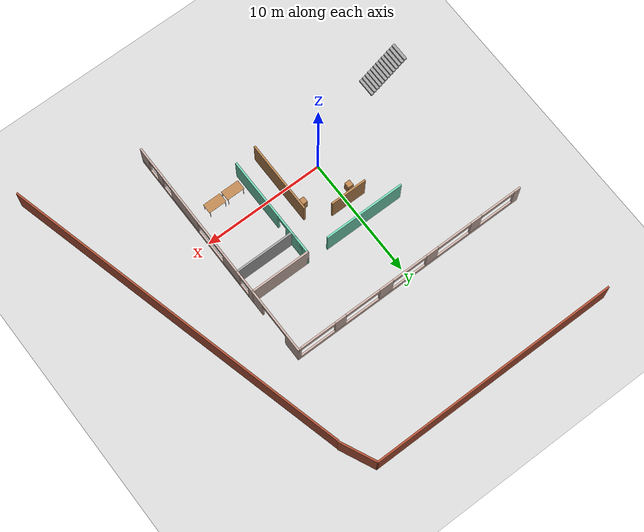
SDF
<sdf version="1.6">
 <world name="default">
  <model name="ground_plane">
   <static>1</static>
   <link name="link">
    <collision name="collision">
     <geometry><plane><normal>0 0 1</normal><size>100 100</size></plane></geometry>
     <surface><friction><ode><mu>100</mu><mu2>50</mu2></ode></friction></surface>
    </collision>
    <visual name="visual">
     <cast_shadows>0</cast_shadows>
     <geometry><plane><normal>0 0 1</normal><size>100 100</size></plane></geometry>
     <material>
      <script><uri>file://media/materials/scripts/gazebo.material</uri><name>Gazebo/Grey</name></script>
     </material>
    </visual>
   </link>
  </model>
  <model name="buildingv2">
   <pose>0.458303 2.11352 0 0 -0 0</pose>
   <link name="Stairs_1">
    <visual name="Stairs_1_Visual_0">
     <pose>-7.25739 -4.97699 0.096154 0 0 -1.5708</pose>
     <geometry><box><size>1.5 0.246923 0.192308</size></box></geometry>
     <material>
      <script><uri>file://media/materials/scripts/gazebo.material</uri><name>Gazebo/Grey</name></script>
      <ambient>1 1 1 1</ambient>
     </material>
     <meta><layer>0</layer></meta>
    </visual>
    <collision name="Stairs_1_Collision_0">
     <geometry><box><size>1.5 0.246923 0.192308</size></box></geometry>
     <pose>-7.25739 -4.97699 0.096154 0 0 -1.5708</pose>
    </collision>
    <visual name="Stairs_1_Visual_1">
     <pose>-7.50432 -4.97699 0.288462 0 0 -1.5708</pose>
     <geometry><box><size>1.5 0.246923 0.192308</size></box></geometry>
     <material>
      <script><uri>file://media/materials/scripts/gazebo.material</uri><name>Gazebo/Grey</name></script>
      <ambient>1 1 1 1</ambient>
     </material>
     <meta><layer>0</layer></meta>
    </visual>
    <collision name="Stairs_1_Collision_1">
     <geometry><box><size>1.5 0.246923 0.192308</size></box></geometry>
     <pose>-7.50432 -4.97699 0.288462 0 0 -1.5708</pose>
    </collision>
    <visual name="Stairs_1_Visual_2">
     <pose>-7.75124 -4.97699 0.480769 0 0 -1.5708</pose>
     <geometry><box><size>1.5 0.246923 0.192308</size></box></geometry>
     <material>
      <script><uri>file://media/materials/scripts/gazebo.material</uri><name>Gazebo/Grey</name></script>
      <ambient>1 1 1 1</ambient>
     </material>
     <meta><layer>0</layer></meta>
    </visual>
    <collision name="Stairs_1_Collision_2">
     <geometry><box><size>1.5 0.246923 0.192308</size></box></geometry>
     <pose>-7.75124 -4.97699 0.480769 0 0 -1.5708</pose>
    </collision>
    <visual name="Stairs_1_Visual_3">
     <pose>-7.99816 -4.97699 0.673077 0 0 -1.5708</pose>
     <geometry><box><size>1.5 0.246923 0.192308</size></box></geometry>
     <material>
      <script><uri>file://media/materials/scripts/gazebo.material</uri><name>Gazebo/Grey</name></script>
      <ambient>1 1 1 1</ambient>
     </material>
     <meta><layer>0</layer></meta>
    </visual>
    <collision name="Stairs_1_Collision_3">
     <geometry><box><size>1.5 0.246923 0.192308</size></box></geometry>
     <pose>-7.99816 -4.97699 0.673077 0 0 -1.5708</pose>
    </collision>
    <visual name="Stairs_1_Visual_4">
     <pose>-8.24509 -4.97699 0.865385 0 0 -1.5708</pose>
     <geometry><box><size>1.5 0.246923 0.192308</size></box></geometry>
     <material>
      <script><uri>file://media/materials/scripts/gazebo.material</uri><name>Gazebo/Grey</name></script>
      <ambient>1 1 1 1</ambient>
     </material>
     <meta><layer>0</layer></meta>
    </visual>
    <collision name="Stairs_1_Collision_4">
     <geometry><box><size>1.5 0.246923 0.192308</size></box></geometry>
     <pose>-8.24509 -4.97699 0.865385 0 0 -1.5708</pose>
    </collision>
    <visual name="Stairs_1_Visual_5">
     <pose>-8.49201 -4.97699 1.05769 0 0 -1.5708</pose>
     <geometry><box><size>1.5 0.246923 0.192308</size></box></geometry>
     <material>
      <script><uri>file://media/materials/scripts/gazebo.material</uri><name>Gazebo/Grey</name></script>
      <ambient>1 1 1 1</ambient>
     </material>
     <meta><layer>0</layer></meta>
    </visual>
    <collision name="Stairs_1_Collision_5">
     <geometry><box><size>1.5 0.246923 0.192308</size></box></geometry>
     <pose>-8.49201 -4.97699 1.05769 0 0 -1.5708</pose>
    </collision>
    <visual name="Stairs_1_Visual_6">
     <pose>-8.73893 -4.97699 1.25 0 0 -1.5708</pose>
     <geometry><box><size>1.5 0.246923 0.192308</size></box></geometry>
     <material>
      <script><uri>file://media/materials/scripts/gazebo.material</uri><name>Gazebo/Grey</name></script>
      <ambient>1 1 1 1</ambient>
     </material>
     <meta><layer>0</layer></meta>
    </visual>
    <collision name="Stairs_1_Collision_6">
     <geometry><box><size>1.5 0.246923 0.192308</size></box></geometry>
     <pose>-8.73893 -4.97699 1.25 0 0 -1.5708</pose>
    </collision>
    <visual name="Stairs_1_Visual_7">
     <pose>-8.98586 -4.97699 1.44231 0 0 -1.5708</pose>
     <geometry><box><size>1.5 0.246923 0.192308</size></box></geometry>
     <material>
      <script><uri>file://media/materials/scripts/gazebo.material</uri><name>Gazebo/Grey</name></script>
      <ambient>1 1 1 1</ambient>
     </material>
     <meta><layer>0</layer></meta>
    </visual>
    <collision name="Stairs_1_Collision_7">
     <geometry><box><size>1.5 0.246923 0.192308</size></box></geometry>
     <pose>-8.98586 -4.97699 1.44231 0 0 -1.5708</pose>
    </collision>
    <visual name="Stairs_1_Visual_8">
     <pose>-9.23278 -4.97699 1.63461 0 0 -1.5708</pose>
     <geometry><box><size>1.5 0.246923 0.192308</size></box></geometry>
     <material>
      <script><uri>file://media/materials/scripts/gazebo.material</uri><name>Gazebo/Grey</name></script>
      <ambient>1 1 1 1</ambient>
     </material>
     <meta><layer>0</layer></meta>
    </visual>
    <collision name="Stairs_1_Collision_8">
     <geometry><box><size>1.5 0.246923 0.192308</size></box></geometry>
     <pose>-9.23278 -4.97699 1.63461 0 0 -1.5708</pose>
    </collision>
    <visual name="Stairs_1_Visual_9">
     <pose>-9.4797 -4.97699 1.82692 0 0 -1.5708</pose>
     <geometry><box><size>1.5 0.246923 0.192308</size></box></geometry>
     <material>
      <script><uri>file://media/materials/scripts/gazebo.material</uri><name>Gazebo/Grey</name></script>
      <ambient>1 1 1 1</ambient>
     </material>
     <meta><layer>0</layer></meta>
    </visual>
    <collision name="Stairs_1_Collision_9">
     <geometry><box><size>1.5 0.246923 0.192308</size></box></geometry>
     <pose>-9.4797 -4.97699 1.82692 0 0 -1.5708</pose>
    </collision>
    <visual name="Stairs_1_Visual_10">
     <pose>-9.72662 -4.97699 2.01923 0 0 -1.5708</pose>
     <geometry><box><size>1.5 0.246923 0.192308</size></box></geometry>
     <material>
      <script><uri>file://media/materials/scripts/gazebo.material</uri><name>Gazebo/Grey</name></script>
      <ambient>1 1 1 1</ambient>
     </material>
     <meta><layer>0</layer></meta>
    </visual>
    <collision name="Stairs_1_Collision_10">
     <geometry><box><size>1.5 0.246923 0.192308</size></box></geometry>
     <pose>-9.72662 -4.97699 2.01923 0 0 -1.5708</pose>
    </collision>
    <visual name="Stairs_1_Visual_11">
     <pose>-9.97355 -4.97699 2.21154 0 0 -1.5708</pose>
     <geometry><box><size>1.5 0.246923 0.192308</size></box></geometry>
     <material>
      <script><uri>file://media/materials/scripts/gazebo.material</uri><name>Gazebo/Grey</name></script>
      <ambient>1 1 1 1</ambient>
     </material>
     <meta><layer>0</layer></meta>
    </visual>
    <collision name="Stairs_1_Collision_11">
     <geometry><box><size>1.5 0.246923 0.192308</size></box></geometry>
     <pose>-9.97355 -4.97699 2.21154 0 0 -1.5708</pose>
    </collision>
    <visual name="Stairs_1_Visual_12">
     <pose>-10.2205 -4.97699 2.40385 0 0 -1.5708</pose>
     <geometry><box><size>1.5 0.246923 0.192308</size></box></geometry>
     <material>
      <script><uri>file://media/materials/scripts/gazebo.material</uri><name>Gazebo/Grey</name></script>
      <ambient>1 1 1 1</ambient>
     </material>
     <meta><layer>0</layer></meta>
    </visual>
    <collision name="Stairs_1_Collision_12">
     <geometry><box><size>1.5 0.246923 0.192308</size></box></geometry>
     <pose>-10.2205 -4.97699 2.40385 0 0 -1.5708</pose>
    </collision>
   </link>
   <link name="Wall_107">
    <collision name="Wall_107_Collision">
     <geometry><box><size>29.3218 0.15 2.5</size></box></geometry>
     <pose>0 0 1.25 0 -0 0</pose>
    </collision>
    <visual name="Wall_107_Visual">
     <pose>0 0 1.25 0 -0 0</pose>
     <geometry><box><size>29.3218 0.15 2.5</size></box></geometry>
     <material>
      <script><uri>file://media/materials/scripts/gazebo.material</uri><name>Gazebo/Bricks</name></script>
      <ambient>1 1 1 1</ambient>
     </material>
     <meta><layer>0</layer></meta>
    </visual>
    <pose>14.9208 1.35275 0 0 -0 1.82599</pose>
   </link>
   <link name="Wall_108">
    <collision name="Wall_108_Collision">
     <geometry><box><size>3.15356 0.15 2.5</size></box></geometry>
     <pose>0 0 1.25 0 -0 0</pose>
    </collision>
    <visual name="Wall_108_Visual">
     <pose>0 0 1.25 0 -0 0</pose>
     <geometry><box><size>3.15356 0.15 2.5</size></box></geometry>
     <material>
      <script><uri>file://media/materials/scripts/gazebo.material</uri><name>Gazebo/Bricks</name></script>
      <ambient>1 1 1 1</ambient>
     </material>
     <meta><layer>0</layer></meta>
    </visual>
    <pose>10.6056 16.9518 0 0 -0 2.006</pose>
   </link>
   <link name="Wall_109">
    <collision name="Wall_109_Collision">
     <geometry><box><size>20.75 0.15 2.5</size></box></geometry>
     <pose>0 0 1.25 0 -0 0</pose>
    </collision>
    <visual name="Wall_109_Visual">
     <pose>0 0 1.25 0 -0 0</pose>
     <geometry><box><size>20.75 0.15 2.5</size></box></geometry>
     <material>
      <script><uri>file://media/materials/scripts/gazebo.material</uri><name>Gazebo/Bricks</name></script>
      <ambient>1 1 1 1</ambient>
     </material>
     <meta><layer>0</layer></meta>
    </visual>
    <pose>-0.327523 18.3136 0 0 -0 3.14159</pose>
   </link>
   <link name="Wall_111">
    <collision name="Wall_111_Collision">
     <geometry><box><size>2 0.15 2.5</size></box></geometry>
     <pose>0 0 1.25 0 -0 0</pose>
    </collision>
    <visual name="Wall_111_Visual">
     <pose>0 0 1.25 0 -0 0</pose>
     <geometry><box><size>2 0.15 2.5</size></box></geometry>
     <material>
      <script><uri>file://media/materials/scripts/gazebo.material</uri><name>Gazebo/Grey</name></script>
      <ambient>0.435294 0.796078 0.67451 1</ambient>
     </material>
     <meta><layer>0</layer></meta>
    </visual>
    <pose>4.67372 2.45158 0 0 -0 1.5708</pose>
   </link>
   <link name="Wall_112">
    <collision name="Wall_112_Collision">
     <geometry><box><size>5 0.15 2.5</size></box></geometry>
     <pose>0 0 1.25 0 -0 0</pose>
    </collision>
    <visual name="Wall_112_Visual">
     <pose>0 0 1.25 0 -0 0</pose>
     <geometry><box><size>5 0.15 2.5</size></box></geometry>
     <material>
      <script><uri>file://media/materials/scripts/gazebo.material</uri><name>Gazebo/Grey</name></script>
      <ambient>0.760784 0.662745 0.627451 1</ambient>
     </material>
     <meta><layer>0</layer></meta>
    </visual>
    <pose>7.09872 3.37658 0 0 -0 0</pose>
   </link>
   <link name="Wall_121">
    <pose>9.52372 6.05158 0 0 -0 1.5708</pose>
    <visual name="Wall_121_Visual_0">
     <pose>-2.0984 0 1.25 0 -0 0</pose>
     <geometry><box><size>1.3032 0.15 2.5</size></box></geometry>
     <material>
      <script><uri>file://media/materials/scripts/gazebo.material</uri><name>Gazebo/Grey</name></script>
      <ambient>0.760784 0.662745 0.627451 1</ambient>
     </material>
     <meta><layer>0</layer></meta>
    </visual>
    <collision name="Wall_121_Collision_0">
     <geometry><box><size>1.3032 0.15 2.5</size></box></geometry>
     <pose>-2.0984 0 1.25 0 -0 0</pose>
    </collision>
    <visual name="Wall_121_Visual_1">
     <pose>1.9816 0 1.25 0 -0 0</pose>
     <geometry><box><size>1.5368 0.15 2.5</size></box></geometry>
     <material>
      <script><uri>file://media/materials/scripts/gazebo.material</uri><name>Gazebo/Grey</name></script>
      <ambient>0.760784 0.662745 0.627451 1</ambient>
     </material>
     <meta><layer>0</layer></meta>
    </visual>
    <collision name="Wall_121_Collision_1">
     <geometry><box><size>1.5368 0.15 2.5</size></box></geometry>
     <pose>1.9816 0 1.25 0 -0 0</pose>
    </collision>
    <visual name="Wall_121_Visual_2">
     <pose>-0.116804 0 2.25 0 -0 0</pose>
     <geometry><box><size>2.66 0.15 0.5</size></box></geometry>
     <material>
      <script><uri>file://media/materials/scripts/gazebo.material</uri><name>Gazebo/Grey</name></script>
      <ambient>0.760784 0.662745 0.627451 1</ambient>
     </material>
     <meta><layer>0</layer></meta>
    </visual>
    <collision name="Wall_121_Collision_2">
     <geometry><box><size>2.66 0.15 0.5</size></box></geometry>
     <pose>-0.116804 0 2.25 0 -0 0</pose>
    </collision>
   </link>
   <link name="Wall_123">
    <pose>9.52372 -3.39842 0 0 0 -1.5708</pose>
    <visual name="Wall_123_Visual_0">
     <pose>-6.5741 0 1.25 0 -0 0</pose>
     <geometry><box><size>0.551797 0.15 2.5</size></box></geometry>
     <material>
      <script><uri>file://media/materials/scripts/gazebo.material</uri><name>Gazebo/Grey</name></script>
      <ambient>0.760784 0.662745 0.627451 1</ambient>
     </material>
     <meta><layer>0</layer></meta>
    </visual>
    <collision name="Wall_123_Collision_0">
     <geometry><box><size>0.551797 0.15 2.5</size></box></geometry>
     <pose>-6.5741 0 1.25 0 -0 0</pose>
    </collision>
    <visual name="Wall_123_Visual_1">
     <pose>0.275898 0 0.25 0 -0 0</pose>
     <geometry><box><size>13.1482 0.15 0.5</size></box></geometry>
     <material>
      <script><uri>file://media/materials/scripts/gazebo.material</uri><name>Gazebo/Grey</name></script>
      <ambient>0.760784 0.662745 0.627451 1</ambient>
     </material>
     <meta><layer>0</layer></meta>
    </visual>
    <collision name="Wall_123_Collision_1">
     <geometry><box><size>13.1482 0.15 0.5</size></box></geometry>
     <pose>0.275898 0 0.25 0 -0 0</pose>
    </collision>
    <visual name="Wall_123_Visual_2">
     <pose>-4.26781 0 1.5 0 -0 0</pose>
     <geometry><box><size>2.06079 0.15 2</size></box></geometry>
     <material>
      <script><uri>file://media/materials/scripts/gazebo.material</uri><name>Gazebo/Grey</name></script>
      <ambient>0.760784 0.662745 0.627451 1</ambient>
     </material>
     <meta><layer>0</layer></meta>
    </visual>
    <collision name="Wall_123_Collision_2">
     <geometry><box><size>2.06079 0.15 2</size></box></geometry>
     <pose>-4.26781 0 1.5 0 -0 0</pose>
    </collision>
    <visual name="Wall_123_Visual_3">
     <pose>1.4125 0 1.5 0 -0 0</pose>
     <geometry><box><size>3.29982 0.15 2</size></box></geometry>
     <material>
      <script><uri>file://media/materials/scripts/gazebo.material</uri><name>Gazebo/Grey</name></script>
      <ambient>0.760784 0.662745 0.627451 1</ambient>
     </material>
     <meta><layer>0</layer></meta>
    </visual>
    <collision name="Wall_123_Collision_3">
     <geometry><box><size>3.29982 0.15 2</size></box></geometry>
     <pose>1.4125 0 1.5 0 -0 0</pose>
    </collision>
    <visual name="Wall_123_Visual_4">
     <pose>4.41893 0 1.5 0 -0 0</pose>
     <geometry><box><size>0.713053 0.15 2</size></box></geometry>
     <material>
      <script><uri>file://media/materials/scripts/gazebo.material</uri><name>Gazebo/Grey</name></script>
      <ambient>0.760784 0.662745 0.627451 1</ambient>
     </material>
     <meta><layer>0</layer></meta>
    </visual>
    <collision name="Wall_123_Collision_4">
     <geometry><box><size>0.713053 0.15 2</size></box></geometry>
     <pose>4.41893 0 1.5 0 -0 0</pose>
    </collision>
    <visual name="Wall_123_Visual_5">
     <pose>6.31273 0 1.5 0 -0 0</pose>
     <geometry><box><size>1.07454 0.15 2</size></box></geometry>
     <material>
      <script><uri>file://media/materials/scripts/gazebo.material</uri><name>Gazebo/Grey</name></script>
      <ambient>0.760784 0.662745 0.627451 1</ambient>
     </material>
     <meta><layer>0</layer></meta>
    </visual>
    <collision name="Wall_123_Collision_5">
     <geometry><box><size>1.07454 0.15 2</size></box></geometry>
     <pose>6.31273 0 1.5 0 -0 0</pose>
    </collision>
    <visual name="Wall_123_Visual_6">
     <pose>-5.7982 0 2.25 0 -0 0</pose>
     <geometry><box><size>1 0.15 0.5</size></box></geometry>
     <material>
      <script><uri>file://media/materials/scripts/gazebo.material</uri><name>Gazebo/Grey</name></script>
      <ambient>0.760784 0.662745 0.627451 1</ambient>
     </material>
     <meta><layer>0</layer></meta>
    </visual>
    <collision name="Wall_123_Collision_6">
     <geometry><box><size>1 0.15 0.5</size></box></geometry>
     <pose>-5.7982 0 2.25 0 -0 0</pose>
    </collision>
    <visual name="Wall_123_Visual_7">
     <pose>-1.73742 0 2.25 0 -0 0</pose>
     <geometry><box><size>3 0.15 0.5</size></box></geometry>
     <material>
      <script><uri>file://media/materials/scripts/gazebo.material</uri><name>Gazebo/Grey</name></script>
      <ambient>0.760784 0.662745 0.627451 1</ambient>
     </material>
     <meta><layer>0</layer></meta>
    </visual>
    <collision name="Wall_123_Collision_7">
     <geometry><box><size>3 0.15 0.5</size></box></geometry>
     <pose>-1.73742 0 2.25 0 -0 0</pose>
    </collision>
    <visual name="Wall_123_Visual_8">
     <pose>3.56241 0 2.25 0 -0 0</pose>
     <geometry><box><size>1 0.15 0.5</size></box></geometry>
     <material>
      <script><uri>file://media/materials/scripts/gazebo.material</uri><name>Gazebo/Grey</name></script>
      <ambient>0.760784 0.662745 0.627451 1</ambient>
     </material>
     <meta><layer>0</layer></meta>
    </visual>
    <collision name="Wall_123_Collision_8">
     <geometry><box><size>1 0.15 0.5</size></box></geometry>
     <pose>3.56241 0 2.25 0 -0 0</pose>
    </collision>
    <visual name="Wall_123_Visual_9">
     <pose>5.27546 0 2.25 0 -0 0</pose>
     <geometry><box><size>1 0.15 0.5</size></box></geometry>
     <material>
      <script><uri>file://media/materials/scripts/gazebo.material</uri><name>Gazebo/Grey</name></script>
      <ambient>0.760784 0.662745 0.627451 1</ambient>
     </material>
     <meta><layer>0</layer></meta>
    </visual>
    <collision name="Wall_123_Collision_9">
     <geometry><box><size>1 0.15 0.5</size></box></geometry>
     <pose>5.27546 0 2.25 0 -0 0</pose>
    </collision>
   </link>
   <link name="Wall_131">
    <pose>4.67372 -1.78352 0 0 -0 1.5708</pose>
    <visual name="Wall_131_Visual_0">
     <pose>-0.819633 0 1.25 0 -0 0</pose>
     <geometry><box><size>5.13093 0.15 2.5</size></box></geometry>
     <material>
      <script><uri>file://media/materials/scripts/gazebo.material</uri><name>Gazebo/Grey</name></script>
      <ambient>0.435294 0.796078 0.67451 1</ambient>
     </material>
     <meta><layer>0</layer></meta>
    </visual>
    <collision name="Wall_131_Collision_0">
     <geometry><box><size>5.13093 0.15 2.5</size></box></geometry>
     <pose>-0.819633 0 1.25 0 -0 0</pose>
    </collision>
    <visual name="Wall_131_Visual_1">
     <pose>3.01547 0 1.25 0 -0 0</pose>
     <geometry><box><size>0.739267 0.15 2.5</size></box></geometry>
     <material>
      <script><uri>file://media/materials/scripts/gazebo.material</uri><name>Gazebo/Grey</name></script>
      <ambient>0.435294 0.796078 0.67451 1</ambient>
     </material>
     <meta><layer>0</layer></meta>
    </visual>
    <collision name="Wall_131_Collision_1">
     <geometry><box><size>0.739267 0.15 2.5</size></box></geometry>
     <pose>3.01547 0 1.25 0 -0 0</pose>
    </collision>
    <visual name="Wall_131_Visual_2">
     <pose>2.19583 0 2.25 0 -0 0</pose>
     <geometry><box><size>0.9 0.15 0.5</size></box></geometry>
     <material>
      <script><uri>file://media/materials/scripts/gazebo.material</uri><name>Gazebo/Grey</name></script>
      <ambient>0.435294 0.796078 0.67451 1</ambient>
     </material>
     <meta><layer>0</layer></meta>
    </visual>
    <collision name="Wall_131_Collision_2">
     <geometry><box><size>0.9 0.15 0.5</size></box></geometry>
     <pose>2.19583 0 2.25 0 -0 0</pose>
    </collision>
   </link>
   <link name="Wall_143">
    <collision name="Wall_143_Collision">
     <geometry><box><size>3 0.15 2.5</size></box></geometry>
     <pose>0 0 1.25 0 -0 0</pose>
    </collision>
    <visual name="Wall_143_Visual">
     <pose>0 0 1.25 0 -0 0</pose>
     <geometry><box><size>3 0.15 2.5</size></box></geometry>
     <material>
      <script><uri>file://media/materials/scripts/gazebo.material</uri><name>Gazebo/Wood</name></script>
      <ambient>1 1 1 1</ambient>
     </material>
     <meta><layer>0</layer></meta>
    </visual>
    <pose>-0.451279 1.52658 0 0 -0 0</pose>
   </link>
   <link name="Wall_159">
    <collision name="Wall_159_Collision">
     <geometry><box><size>6.7 0.15 2.5</size></box></geometry>
     <pose>0 0 1.25 0 -0 0</pose>
    </collision>
    <visual name="Wall_159_Visual">
     <pose>0 0 1.25 0 -0 0</pose>
     <geometry><box><size>6.7 0.15 2.5</size></box></geometry>
     <material>
      <script><uri>file://media/materials/scripts/gazebo.material</uri><name>Gazebo/Grey</name></script>
      <ambient>0.435294 0.796078 0.67451 1</ambient>
     </material>
     <meta><layer>0</layer></meta>
    </visual>
    <pose>-0.451279 3.37658 0 0 -0 3.14159</pose>
   </link>
   <link name="Wall_174">
    <pose>4.67372 2.45158 0 0 0 -1.5708</pose>
    <visual name="Wall_174_Visual_0">
     <pose>-0.698273 0 1.25 0 -0 0</pose>
     <geometry><box><size>0.603454 0.15 2.5</size></box></geometry>
     <material>
      <script><uri>file://media/materials/scripts/gazebo.material</uri><name>Gazebo/Grey</name></script>
      <ambient>0.435294 0.796078 0.67451 1</ambient>
     </material>
     <meta><layer>0</layer></meta>
    </visual>
    <collision name="Wall_174_Collision_0">
     <geometry><box><size>0.603454 0.15 2.5</size></box></geometry>
     <pose>-0.698273 0 1.25 0 -0 0</pose>
    </collision>
    <visual name="Wall_174_Visual_1">
     <pose>0.751727 0 1.25 0 -0 0</pose>
     <geometry><box><size>0.496546 0.15 2.5</size></box></geometry>
     <material>
      <script><uri>file://media/materials/scripts/gazebo.material</uri><name>Gazebo/Grey</name></script>
      <ambient>0.435294 0.796078 0.67451 1</ambient>
     </material>
     <meta><layer>0</layer></meta>
    </visual>
    <collision name="Wall_174_Collision_1">
     <geometry><box><size>0.496546 0.15 2.5</size></box></geometry>
     <pose>0.751727 0 1.25 0 -0 0</pose>
    </collision>
    <visual name="Wall_174_Visual_2">
     <pose>0.053454 0 2.25 0 -0 0</pose>
     <geometry><box><size>0.9 0.15 0.5</size></box></geometry>
     <material>
      <script><uri>file://media/materials/scripts/gazebo.material</uri><name>Gazebo/Grey</name></script>
      <ambient>0.435294 0.796078 0.67451 1</ambient>
     </material>
     <meta><layer>0</layer></meta>
    </visual>
    <collision name="Wall_174_Collision_2">
     <geometry><box><size>0.9 0.15 0.5</size></box></geometry>
     <pose>0.053454 0 2.25 0 -0 0</pose>
    </collision>
   </link>
   <link name="Wall_177">
    <collision name="Wall_177_Collision">
     <geometry><box><size>5 0.15 2.5</size></box></geometry>
     <pose>0 0 1.25 0 -0 0</pose>
    </collision>
    <visual name="Wall_177_Visual">
     <pose>0 0 1.25 0 -0 0</pose>
     <geometry><box><size>5 0.15 2.5</size></box></geometry>
     <material>
      <script><uri>file://media/materials/scripts/gazebo.material</uri><name>Gazebo/Grey</name></script>
      <ambient>1 1 1 1</ambient>
     </material>
     <meta><layer>0</layer></meta>
    </visual>
    <pose>7.09872 1.52658 0 0 -0 0</pose>
   </link>
   <link name="Wall_5">
    <collision name="Wall_5_Collision">
     <geometry><box><size>6 0.15 2.5</size></box></geometry>
     <pose>0 0 1.25 0 -0 0</pose>
    </collision>
    <visual name="Wall_5_Visual">
     <pose>0 0 1.25 0 -0 0</pose>
     <geometry><box><size>6 0.15 2.5</size></box></geometry>
     <material>
      <script><uri>file://media/materials/scripts/gazebo.material</uri><name>Gazebo/Wood</name></script>
      <ambient>1 1 1 1</ambient>
     </material>
     <meta><layer>0</layer></meta>
    </visual>
    <pose>2.82372 -2.39842 0 0 -0 1.5708</pose>
   </link>
   <link name="Wall_96">
    <pose>-0.501279 8.72658 0 0 -0 0</pose>
    <visual name="Wall_96_Visual_0">
     <pose>-9.71594 0 1.25 0 -0 0</pose>
     <geometry><box><size>0.56811 0.15 2.5</size></box></geometry>
     <material>
      <script><uri>file://media/materials/scripts/gazebo.material</uri><name>Gazebo/Grey</name></script>
      <ambient>0.760784 0.662745 0.627451 1</ambient>
     </material>
     <meta><layer>0</layer></meta>
    </visual>
    <collision name="Wall_96_Collision_0">
     <geometry><box><size>0.56811 0.15 2.5</size></box></geometry>
     <pose>-9.71594 0 1.25 0 -0 0</pose>
    </collision>
    <visual name="Wall_96_Visual_1">
     <pose>0.284055 0 0.25 0 -0 0</pose>
     <geometry><box><size>19.4319 0.15 0.5</size></box></geometry>
     <material>
      <script><uri>file://media/materials/scripts/gazebo.material</uri><name>Gazebo/Grey</name></script>
      <ambient>0.760784 0.662745 0.627451 1</ambient>
     </material>
     <meta><layer>0</layer></meta>
    </visual>
    <collision name="Wall_96_Collision_1">
     <geometry><box><size>19.4319 0.15 0.5</size></box></geometry>
     <pose>0.284055 0 0.25 0 -0 0</pose>
    </collision>
    <visual name="Wall_96_Visual_2">
     <pose>-5.94266 0 1.5 0 -0 0</pose>
     <geometry><box><size>0.978465 0.15 2</size></box></geometry>
     <material>
      <script><uri>file://media/materials/scripts/gazebo.material</uri><name>Gazebo/Grey</name></script>
      <ambient>0.760784 0.662745 0.627451 1</ambient>
     </material>
     <meta><layer>0</layer></meta>
    </visual>
    <collision name="Wall_96_Collision_2">
     <geometry><box><size>0.978465 0.15 2</size></box></geometry>
     <pose>-5.94266 0 1.5 0 -0 0</pose>
    </collision>
    <visual name="Wall_96_Visual_3">
     <pose>-1.91793 0 1.5 0 -0 0</pose>
     <geometry><box><size>1.07099 0.15 2</size></box></geometry>
     <material>
      <script><uri>file://media/materials/scripts/gazebo.material</uri><name>Gazebo/Grey</name></script>
      <ambient>0.760784 0.662745 0.627451 1</ambient>
     </material>
     <meta><layer>0</layer></meta>
    </visual>
    <collision name="Wall_96_Collision_3">
     <geometry><box><size>1.07099 0.15 2</size></box></geometry>
     <pose>-1.91793 0 1.5 0 -0 0</pose>
    </collision>
    <visual name="Wall_96_Visual_4">
     <pose>2.22245 0 1.5 0 -0 0</pose>
     <geometry><box><size>1.20977 0.15 2</size></box></geometry>
     <material>
      <script><uri>file://media/materials/scripts/gazebo.material</uri><name>Gazebo/Grey</name></script>
      <ambient>0.760784 0.662745 0.627451 1</ambient>
     </material>
     <meta><layer>0</layer></meta>
    </visual>
    <collision name="Wall_96_Collision_4">
     <geometry><box><size>1.20977 0.15 2</size></box></geometry>
     <pose>2.22245 0 1.5 0 -0 0</pose>
    </collision>
    <visual name="Wall_96_Visual_5">
     <pose>6.3144 0 1.5 0 -0 0</pose>
     <geometry><box><size>0.974142 0.15 2</size></box></geometry>
     <material>
      <script><uri>file://media/materials/scripts/gazebo.material</uri><name>Gazebo/Grey</name></script>
      <ambient>0.760784 0.662745 0.627451 1</ambient>
     </material>
     <meta><layer>0</layer></meta>
    </visual>
    <collision name="Wall_96_Collision_5">
     <geometry><box><size>0.974142 0.15 2</size></box></geometry>
     <pose>6.3144 0 1.5 0 -0 0</pose>
    </collision>
    <visual name="Wall_96_Visual_6">
     <pose>9.90074 0 1.5 0 -0 0</pose>
     <geometry><box><size>0.198525 0.15 2</size></box></geometry>
     <material>
      <script><uri>file://media/materials/scripts/gazebo.material</uri><name>Gazebo/Grey</name></script>
      <ambient>0.760784 0.662745 0.627451 1</ambient>
     </material>
     <meta><layer>0</layer></meta>
    </visual>
    <collision name="Wall_96_Collision_6">
     <geometry><box><size>0.198525 0.15 2</size></box></geometry>
     <pose>9.90074 0 1.5 0 -0 0</pose>
    </collision>
    <visual name="Wall_96_Visual_7">
     <pose>-7.93189 0 2.25 0 -0 0</pose>
     <geometry><box><size>3 0.15 0.5</size></box></geometry>
     <material>
      <script><uri>file://media/materials/scripts/gazebo.material</uri><name>Gazebo/Grey</name></script>
      <ambient>0.760784 0.662745 0.627451 1</ambient>
     </material>
     <meta><layer>0</layer></meta>
    </visual>
    <collision name="Wall_96_Collision_7">
     <geometry><box><size>3 0.15 0.5</size></box></geometry>
     <pose>-7.93189 0 2.25 0 -0 0</pose>
    </collision>
    <visual name="Wall_96_Visual_8">
     <pose>-3.95343 0 2.25 0 -0 0</pose>
     <geometry><box><size>3 0.15 0.5</size></box></geometry>
     <material>
      <script><uri>file://media/materials/scripts/gazebo.material</uri><name>Gazebo/Grey</name></script>
      <ambient>0.760784 0.662745 0.627451 1</ambient>
     </material>
     <meta><layer>0</layer></meta>
    </visual>
    <collision name="Wall_96_Collision_8">
     <geometry><box><size>3 0.15 0.5</size></box></geometry>
     <pose>-3.95343 0 2.25 0 -0 0</pose>
    </collision>
    <visual name="Wall_96_Visual_9">
     <pose>0.117562 0 2.25 0 -0 0</pose>
     <geometry><box><size>3 0.15 0.5</size></box></geometry>
     <material>
      <script><uri>file://media/materials/scripts/gazebo.material</uri><name>Gazebo/Grey</name></script>
      <ambient>0.760784 0.662745 0.627451 1</ambient>
     </material>
     <meta><layer>0</layer></meta>
    </visual>
    <collision name="Wall_96_Collision_9">
     <geometry><box><size>3 0.15 0.5</size></box></geometry>
     <pose>0.117562 0 2.25 0 -0 0</pose>
    </collision>
    <visual name="Wall_96_Visual_10">
     <pose>4.32733 0 2.25 0 -0 0</pose>
     <geometry><box><size>3 0.15 0.5</size></box></geometry>
     <material>
      <script><uri>file://media/materials/scripts/gazebo.material</uri><name>Gazebo/Grey</name></script>
      <ambient>0.760784 0.662745 0.627451 1</ambient>
     </material>
     <meta><layer>0</layer></meta>
    </visual>
    <collision name="Wall_96_Collision_10">
     <geometry><box><size>3 0.15 0.5</size></box></geometry>
     <pose>4.32733 0 2.25 0 -0 0</pose>
    </collision>
    <visual name="Wall_96_Visual_11">
     <pose>8.30147 0 2.25 0 -0 0</pose>
     <geometry><box><size>3 0.15 0.5</size></box></geometry>
     <material>
      <script><uri>file://media/materials/scripts/gazebo.material</uri><name>Gazebo/Grey</name></script>
      <ambient>0.760784 0.662745 0.627451 1</ambient>
     </material>
     <meta><layer>0</layer></meta>
    </visual>
    <collision name="Wall_96_Collision_11">
     <geometry><box><size>3 0.15 0.5</size></box></geometry>
     <pose>8.30147 0 2.25 0 -0 0</pose>
    </collision>
   </link>
   <static>1</static>
  </model>
  <model name="table_clone">
   <static>1</static>
   <link name="link">
    <collision name="surface">
     <pose>0 0 1 0 -0 0</pose>
     <geometry><box><size>1.5 0.8 0.03</size></box></geometry>
     <surface><friction><ode><mu>0.6</mu><mu2>0.6</mu2></ode></friction></surface>
    </collision>
    <visual name="visual1">
     <pose>0 0 1 0 -0 0</pose>
     <geometry><box><size>1.5 0.8 0.03</size></box></geometry>
     <material>
      <script><uri>file://media/materials/scripts/gazebo.material</uri><name>Gazebo/Wood</name></script>
     </material>
    </visual>
    <collision name="front_left_leg">
     <pose>0.68 0.38 0.5 0 -0 0</pose>
     <geometry><cylinder><radius>0.02</radius><length>1</length></cylinder></geometry>
    </collision>
    <visual name="front_left_leg">
     <pose>0.68 0.38 0.5 0 -0 0</pose>
     <geometry><cylinder><radius>0.02</radius><length>1</length></cylinder></geometry>
     <material>
      <script><uri>file://media/materials/scripts/gazebo.material</uri><name>Gazebo/Grey</name></script>
     </material>
    </visual>
    <collision name="front_right_leg">
     <pose>0.68 -0.38 0.5 0 -0 0</pose>
     <geometry><cylinder><radius>0.02</radius><length>1</length></cylinder></geometry>
    </collision>
    <visual name="front_right_leg">
     <pose>0.68 -0.38 0.5 0 -0 0</pose>
     <geometry><cylinder><radius>0.02</radius><length>1</length></cylinder></geometry>
     <material>
      <script><uri>file://media/materials/scripts/gazebo.material</uri><name>Gazebo/Grey</name></script>
     </material>
    </visual>
    <collision name="back_right_leg">
     <pose>-0.68 -0.38 0.5 0 -0 0</pose>
     <geometry><cylinder><radius>0.02</radius><length>1</length></cylinder></geometry>
    </collision>
    <visual name="back_right_leg">
     <pose>-0.68 -0.38 0.5 0 -0 0</pose>
     <geometry><cylinder><radius>0.02</radius><length>1</length></cylinder></geometry>
     <material>
      <script><uri>file://media/materials/scripts/gazebo.material</uri><name>Gazebo/Grey</name></script>
     </material>
    </visual>
    <collision name="back_left_leg">
     <pose>-0.68 0.38 0.5 0 -0 0</pose>
     <geometry><cylinder><radius>0.02</radius><length>1</length></cylinder></geometry>
    </collision>
    <visual name="back_left_leg">
     <pose>-0.68 0.38 0.5 0 -0 0</pose>
     <geometry><cylinder><radius>0.02</radius><length>1</length></cylinder></geometry>
     <material>
      <script><uri>file://media/materials/scripts/gazebo.material</uri><name>Gazebo/Grey</name></script>
     </material>
    </visual>
   </link>
   <pose>6.29948 -1.99157 0 0 -0 0</pose>
  </model>
  <model name="table_clone_0">
   <static>1</static>
   <link name="link">
    <collision name="surface">
     <pose>0 0 1 0 -0 0</pose>
     <geometry><box><size>1.5 0.8 0.03</size></box></geometry>
     <surface><friction><ode><mu>0.6</mu><mu2>0.6</mu2></ode></friction></surface>
    </collision>
    <visual name="visual1">
     <pose>0 0 1 0 -0 0</pose>
     <geometry><box><size>1.5 0.8 0.03</size></box></geometry>
     <material>
      <script><uri>file://media/materials/scripts/gazebo.material</uri><name>Gazebo/Wood</name></script>
     </material>
    </visual>
    <collision name="front_left_leg">
     <pose>0.68 0.38 0.5 0 -0 0</pose>
     <geometry><cylinder><radius>0.02</radius><length>1</length></cylinder></geometry>
    </collision>
    <visual name="front_left_leg">
     <pose>0.68 0.38 0.5 0 -0 0</pose>
     <geometry><cylinder><radius>0.02</radius><length>1</length></cylinder></geometry>
     <material>
      <script><uri>file://media/materials/scripts/gazebo.material</uri><name>Gazebo/Grey</name></script>
     </material>
    </visual>
    <collision name="front_right_leg">
     <pose>0.68 -0.38 0.5 0 -0 0</pose>
     <geometry><cylinder><radius>0.02</radius><length>1</length></cylinder></geometry>
    </collision>
    <visual name="front_right_leg">
     <pose>0.68 -0.38 0.5 0 -0 0</pose>
     <geometry><cylinder><radius>0.02</radius><length>1</length></cylinder></geometry>
     <material>
      <script><uri>file://media/materials/scripts/gazebo.material</uri><name>Gazebo/Grey</name></script>
     </material>
    </visual>
    <collision name="back_right_leg">
     <pose>-0.68 -0.38 0.5 0 -0 0</pose>
     <geometry><cylinder><radius>0.02</radius><length>1</length></cylinder></geometry>
    </collision>
    <visual name="back_right_leg">
     <pose>-0.68 -0.38 0.5 0 -0 0</pose>
     <geometry><cylinder><radius>0.02</radius><length>1</length></cylinder></geometry>
     <material>
      <script><uri>file://media/materials/scripts/gazebo.material</uri><name>Gazebo/Grey</name></script>
     </material>
    </visual>
    <collision name="back_left_leg">
     <pose>-0.68 0.38 0.5 0 -0 0</pose>
     <geometry><cylinder><radius>0.02</radius><length>1</length></cylinder></geometry>
    </collision>
    <visual name="back_left_leg">
     <pose>-0.68 0.38 0.5 0 -0 0</pose>
     <geometry><cylinder><radius>0.02</radius><length>1</length></cylinder></geometry>
     <material>
      <script><uri>file://media/materials/scripts/gazebo.material</uri><name>Gazebo/Grey</name></script>
     </material>
    </visual>
   </link>
   <pose>7.93689 -1.9741 0 0 -0 0</pose>
  </model>
  <model name="cabinet_0">
   <static>1</static>
   <link name="cabinet_bottom_plate">
    <inertial>
     <pose>0 0 -1 0 -0 0</pose>
     <inertia><ixx>2.05</ixx><ixy>0</ixy><ixz>0</ixz><iyy>2.05</iyy><iyz>0</iyz><izz>2.05</izz></inertia>
     <mass>25</mass>
    </inertial>
    <collision name="cabinet_bottom_plate_geom">
     <pose>0 0 0.01 0 -0 0</pose>
     <geometry><box><size>0.45 0.45 0.02</size></box></geometry>
    </collision>
    <visual name="cabinet_bottom_plate_geom_visual">
     <pose>0 0 0.01 0 -0 0</pose>
     <geometry><box><size>0.45 0.45 0.02</size></box></geometry>
     <material>
      <script><uri>file://media/materials/scripts/gazebo.material</uri><name>Gazebo/Wood</name></script>
     </material>
    </visual>
    <collision name="cabinet_bottom_plate_geom_cabinet_back_plate">
     <pose>0.235 0 0.51 0 -0 0</pose>
     <geometry><box><size>0.02 0.45 1.02</size></box></geometry>
    </collision>
    <visual name="cabinet_bottom_plate_geom_cabinet_back_plate_visual">
     <pose>0.235 0 0.51 0 -0 0</pose>
     <geometry><box><size>0.02 0.45 1.02</size></box></geometry>
     <material>
      <script><uri>file://media/materials/scripts/gazebo.material</uri><name>Gazebo/Wood</name></script>
     </material>
    </visual>
    <collision name="cabinet_bottom_plate_geom_cabinet_left_plate">
     <pose>0 0.235 0.51 0 -0 0</pose>
     <geometry><box><size>0.45 0.02 1.02</size></box></geometry>
    </collision>
    <visual name="cabinet_bottom_plate_geom_cabinet_left_plate_visual">
     <pose>0 0.235 0.51 0 -0 0</pose>
     <geometry><box><size>0.45 0.02 1.02</size></box></geometry>
     <material>
      <script><uri>file://media/materials/scripts/gazebo.material</uri><name>Gazebo/Wood</name></script>
     </material>
    </visual>
    <collision name="cabinet_bottom_plate_geom_cabinet_middle_plate">
     <pose>0 0 0.51 0 -0 0</pose>
     <geometry><box><size>0.45 0.45 0.02</size></box></geometry>
    </collision>
    <visual name="cabinet_bottom_plate_geom_cabinet_middle_plate_visual">
     <pose>0 0 0.51 0 -0 0</pose>
     <geometry><box><size>0.45 0.45 0.02</size></box></geometry>
     <material>
      <script><uri>file://media/materials/scripts/gazebo.material</uri><name>Gazebo/Wood</name></script>
     </material>
    </visual>
    <collision name="cabinet_bottom_plate_geom_cabinet_right_plate">
     <pose>0 -0.235 0.51 0 -0 0</pose>
     <geometry><box><size>0.45 0.02 1.02</size></box></geometry>
    </collision>
    <visual name="cabinet_bottom_plate_geom_cabinet_right_plate_visual">
     <pose>0 -0.235 0.51 0 -0 0</pose>
     <geometry><box><size>0.45 0.02 1.02</size></box></geometry>
     <material>
      <script><uri>file://media/materials/scripts/gazebo.material</uri><name>Gazebo/Wood</name></script>
     </material>
    </visual>
    <collision name="cabinet_bottom_plate_geom_cabinet_top_plate">
     <pose>0 0 1.01 0 -0 0</pose>
     <geometry><box><size>0.45 0.45 0.02</size></box></geometry>
    </collision>
    <visual name="cabinet_bottom_plate_geom_cabinet_top_plate_visual">
     <pose>0 0 1.01 0 -0 0</pose>
     <geometry><box><size>0.45 0.45 0.02</size></box></geometry>
     <material>
      <script><uri>file://media/materials/scripts/gazebo.material</uri><name>Gazebo/Wood</name></script>
     </material>
    </visual>
   </link>
   <pose>2.69919 1.77038 0 0 -0 0</pose>
  </model>
  <model name="cabinet_1">
   <static>1</static>
   <link name="cabinet_bottom_plate">
    <inertial>
     <pose>0 0 -1 0 -0 0</pose>
     <inertia><ixx>2.05</ixx><ixy>0</ixy><ixz>0</ixz><iyy>2.05</iyy><iyz>0</iyz><izz>2.05</izz></inertia>
     <mass>25</mass>
    </inertial>
    <collision name="cabinet_bottom_plate_geom">
     <pose>0 0 0.01 0 -0 0</pose>
     <geometry><box><size>0.45 0.45 0.02</size></box></geometry>
    </collision>
    <visual name="cabinet_bottom_plate_geom_visual">
     <pose>0 0 0.01 0 -0 0</pose>
     <geometry><box><size>0.45 0.45 0.02</size></box></geometry>
     <material>
      <script><uri>file://media/materials/scripts/gazebo.material</uri><name>Gazebo/Wood</name></script>
     </material>
    </visual>
    <collision name="cabinet_bottom_plate_geom_cabinet_back_plate">
     <pose>0.235 0 0.51 0 -0 0</pose>
     <geometry><box><size>0.02 0.45 1.02</size></box></geometry>
    </collision>
    <visual name="cabinet_bottom_plate_geom_cabinet_back_plate_visual">
     <pose>0.235 0 0.51 0 -0 0</pose>
     <geometry><box><size>0.02 0.45 1.02</size></box></geometry>
     <material>
      <script><uri>file://media/materials/scripts/gazebo.material</uri><name>Gazebo/Wood</name></script>
     </material>
    </visual>
    <collision name="cabinet_bottom_plate_geom_cabinet_left_plate">
     <pose>0 0.235 0.51 0 -0 0</pose>
     <geometry><box><size>0.45 0.02 1.02</size></box></geometry>
    </collision>
    <visual name="cabinet_bottom_plate_geom_cabinet_left_plate_visual">
     <pose>0 0.235 0.51 0 -0 0</pose>
     <geometry><box><size>0.45 0.02 1.02</size></box></geometry>
     <material>
      <script><uri>file://media/materials/scripts/gazebo.material</uri><name>Gazebo/Wood</name></script>
     </material>
    </visual>
    <collision name="cabinet_bottom_plate_geom_cabinet_middle_plate">
     <pose>0 0 0.51 0 -0 0</pose>
     <geometry><box><size>0.45 0.45 0.02</size></box></geometry>
    </collision>
    <visual name="cabinet_bottom_plate_geom_cabinet_middle_plate_visual">
     <pose>0 0 0.51 0 -0 0</pose>
     <geometry><box><size>0.45 0.45 0.02</size></box></geometry>
     <material>
      <script><uri>file://media/materials/scripts/gazebo.material</uri><name>Gazebo/Wood</name></script>
     </material>
    </visual>
    <collision name="cabinet_bottom_plate_geom_cabinet_right_plate">
     <pose>0 -0.235 0.51 0 -0 0</pose>
     <geometry><box><size>0.45 0.02 1.02</size></box></geometry>
    </collision>
    <visual name="cabinet_bottom_plate_geom_cabinet_right_plate_visual">
     <pose>0 -0.235 0.51 0 -0 0</pose>
     <geometry><box><size>0.45 0.02 1.02</size></box></geometry>
     <material>
      <script><uri>file://media/materials/scripts/gazebo.material</uri><name>Gazebo/Wood</name></script>
     </material>
    </visual>
    <collision name="cabinet_bottom_plate_geom_cabinet_top_plate">
     <pose>0 0 1.01 0 -0 0</pose>
     <geometry><box><size>0.45 0.45 0.02</size></box></geometry>
    </collision>
    <visual name="cabinet_bottom_plate_geom_cabinet_top_plate_visual">
     <pose>0 0 1.01 0 -0 0</pose>
     <geometry><box><size>0.45 0.45 0.02</size></box></geometry>
     <material>
      <script><uri>file://media/materials/scripts/gazebo.material</uri><name>Gazebo/Wood</name></script>
     </material>
    </visual>
   </link>
   <pose>-0.766994 2.74937 0 0 -0 0</pose>
  </model>
 </world>
</sdf>
